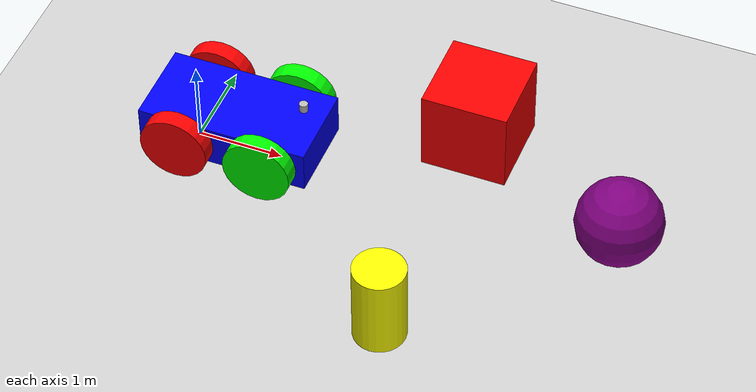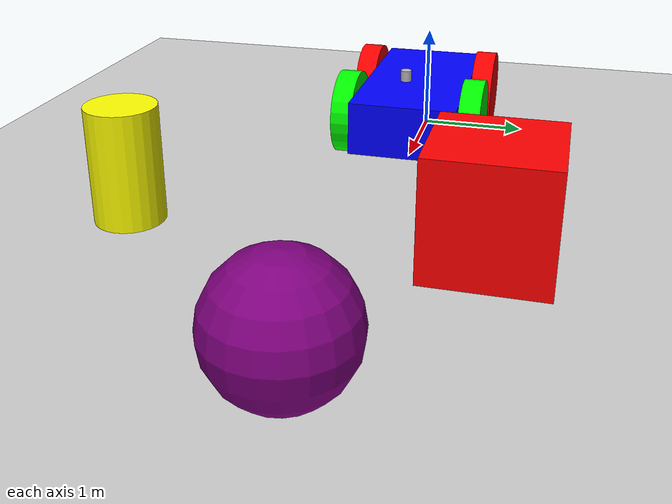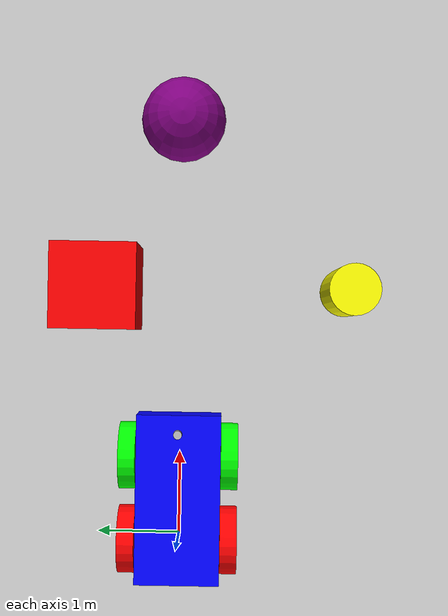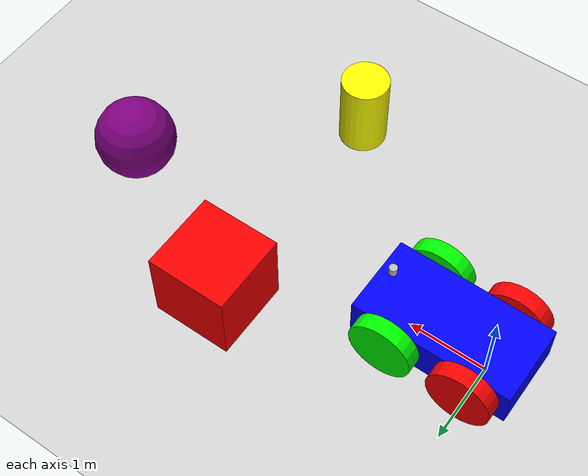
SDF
<?xml version="1.0" ?>
<sdf version="1.10">
    <world name="car_world">
        <physics name="1ms" type="ignored">
            <max_step_size>0.001</max_step_size>
            <real_time_factor>1.0</real_time_factor>
        </physics>

        <plugin filename="gz-sim-sensors-system"
                name="gz::sim::systems::Sensors">
            <render_engine>ogre2</render_engine>
        </plugin>
        <plugin
            filename="gz-sim-physics-system"
            name="gz::sim::systems::Physics">
        </plugin>
        <plugin
            filename="gz-sim-user-commands-system"
            name="gz::sim::systems::UserCommands">
        </plugin>
        <plugin
            filename="gz-sim-scene-broadcaster-system"
            name="gz::sim::systems::SceneBroadcaster">
        </plugin>

        <light type="directional" name="sun">
            <cast_shadows>true</cast_shadows>
            <pose>0 0 10 0 0 0</pose>
            <diffuse>0.8 0.8 0.8 1</diffuse>
            <specular>0.2 0.2 0.2 1</specular>
            <attenuation>
                <range>1000</range>
                <constant>0.9</constant>
                <linear>0.01</linear>
                <quadratic>0.001</quadratic>
            </attenuation>
            <direction>-0.5 0.1 -0.9</direction>
        </light>

        <model name="ground_plane">
            <static>true</static>
            <link name="link">
                <collision name="collision">
                <geometry>
                    <plane>
                    <normal>0 0 1</normal>
                    </plane>
                </geometry>
                </collision>
                <visual name="visual">
                <geometry>
                    <plane>
                    <normal>0 0 1</normal>
                    <size>100 100</size>
                    </plane>
                </geometry>
                <material>
                    <ambient>0.8 0.8 0.8 1</ambient>
                    <diffuse>0.8 0.8 0.8 1</diffuse>
                    <specular>0.8 0.8 0.8 1</specular>
                </material>
                </visual>
            </link>
        </model>

        <model name="red_box">
        <pose>3 1 0.5 0 0 0</pose>
        <link name="link">
            <collision name="collision">
            <geometry>
                <box><size>1 1 1</size></box>
            </geometry>
            </collision>
            <visual name="visual">
            <geometry>
                <box><size>1 1 1</size></box>
            </geometry>
            <material>
                <ambient>1 0 0 1</ambient>
                <diffuse>1 0 0 1</diffuse>
                <specular>0.5 0.5 0.5 1</specular>
            </material>
            </visual>
        </link>
        </model>

        <model name="yellow_cylinder">
        <pose>3 -2 0.5 0 0 0</pose>
        <link name="link">
            <collision name="collision">
            <geometry>
                <cylinder>
                <radius>0.3</radius>
                <length>1.0</length>
                </cylinder>
            </geometry>
            </collision>
            <visual name="visual">
            <geometry>
                <cylinder>
                <radius>0.3</radius>
                <length>1.0</length>
                </cylinder>
            </geometry>
            <material>
                <ambient>1 1 0 1</ambient>
                <diffuse>1 1 0 1</diffuse>
                <specular>0.5 0.5 0.5 1</specular>
            </material>
            </visual>
        </link>
        </model>

        <model name="purple_sphere">
        <pose>5 0 0.5 0 0 0</pose>
        <link name="link">
            <collision name="collision">
            <geometry>
                <sphere><radius>0.5</radius></sphere>
            </geometry>
            </collision>
            <visual name="visual">
            <geometry>
                <sphere><radius>0.5</radius></sphere>
            </geometry>
            <material>
                <ambient>0.5 0 0.5 1</ambient>
                <diffuse>0.5 0 0.5 1</diffuse>
                <specular>0.5 0.5 0.5 1</specular>
            </material>
            </visual>
        </link>
        </model>

        <model name='vehicle_blue' canonical_link='chassis'>

            <plugin filename="gz-sim-diff-drive-system"
                    name="gz::sim::systems::DiffDrive">
                <!-- For 4-wheel drive, list both front and rear joints -->
                <left_joint>left_front_wheel_joint</left_joint>
                <left_joint>left_back_wheel_joint</left_joint>
                <right_joint>right_front_wheel_joint</right_joint>
                <right_joint>right_back_wheel_joint</right_joint>
                <wheel_separation>1.2</wheel_separation>
                <wheel_radius>0.4</wheel_radius>
                <odom_publish_frequency>1</odom_publish_frequency>
                <topic>cmd_vel</topic>
            </plugin>

            <pose relative_to='world'>0 0 0 0 0 0</pose>
            <link name='chassis'>
                <pose relative_to='__model__'>0.5 0 0.4 0 0 0</pose>
                    <inertial> <!--inertial properties of the link mass, inertia matix-->
                        <mass>1.14395</mass>
                        <inertia>
                            <ixx>0.095329</ixx>
                            <ixy>0</ixy>
                            <ixz>0</ixz>
                            <iyy>0.381317</iyy>
                            <iyz>0</iyz>
                            <izz>0.476646</izz>
                        </inertia>
                    </inertial>
                    <visual name='visual'>
                        <geometry>
                            <box>
                                <size>2.0 1.0 0.5</size>
                            </box>
                        </geometry>
                        <!--let's add color to our link-->
                        <material>
                            <ambient>0.0 0.0 1.0 1</ambient>
                            <diffuse>0.0 0.0 1.0 1</diffuse>
                            <specular>0.0 0.0 1.0 1</specular>
                        </material>
                    </visual>
                    <collision name='collision'>
                        <geometry>
                            <box>
                                <size>2.0 1.0 0.5</size>
                            </box>
                        </geometry>
                    </collision>
            </link>
            <link name='left_back_wheel'>
                <pose relative_to="chassis">-0.5 0.6 0 -1.5707 0 0</pose>
                <inertial>
                    <mass>1</mass>
                    <inertia>
                        <ixx>0.043333</ixx>
                        <ixy>0</ixy>
                        <ixz>0</ixz>
                        <iyy>0.043333</iyy>
                        <iyz>0</iyz>
                        <izz>0.08</izz>
                    </inertia>
                </inertial>
                <visual name='visual'>
                    <geometry>
                        <cylinder>
                            <radius>0.4</radius>
                            <length>0.2</length>
                        </cylinder>
                    </geometry>
                    <material>
                        <ambient>1.0 0.0 0.0 1</ambient>
                        <diffuse>1.0 0.0 0.0 1</diffuse>
                        <specular>1.0 0.0 0.0 1</specular>
                    </material>
                </visual>
                <collision name='collision'>
                    <geometry>
                        <cylinder>
                            <radius>0.4</radius>
                            <length>0.2</length>
                        </cylinder>
                    </geometry>
                </collision>
            </link>
            <link name='right_back_wheel'>
                <pose relative_to="chassis">-0.5 -0.6 0 -1.5707 0 0</pose> <!--angles are in radian-->
                <inertial>
                    <mass>1</mass>
                    <inertia>
                        <ixx>0.043333</ixx>
                        <ixy>0</ixy>
                        <ixz>0</ixz>
                        <iyy>0.043333</iyy>
                        <iyz>0</iyz>
                        <izz>0.08</izz>
                    </inertia>
                </inertial>
                <visual name='visual'>
                    <geometry>
                        <cylinder>
                            <radius>0.4</radius>
                            <length>0.2</length>
                        </cylinder>
                    </geometry>
                    <material>
                        <ambient>1.0 0.0 0.0 1</ambient>
                        <diffuse>1.0 0.0 0.0 1</diffuse>
                        <specular>1.0 0.0 0.0 1</specular>
                    </material>
                </visual>
                <collision name='collision'>
                    <geometry>
                        <cylinder>
                            <radius>0.4</radius>
                            <length>0.2</length>
                        </cylinder>
                    </geometry>
                </collision>
            </link>

            <frame name="front_right_frame" attached_to='chassis'>
                <pose>0.5 -0.6 0 -1.5707 0 0</pose>
            </frame>
            <frame name="front_left_frame" attached_to='chassis'>
                <pose>0.5 0.6 0 -1.5707 0 0</pose>
            </frame>

            <!--caster wheel-->
            <link name='right_front_wheel'>
                <pose relative_to='front_right_frame'/>
                <inertial>
                    <mass>1</mass>
                    <inertia>
                        <ixx>0.043333</ixx>
                        <ixy>0</ixy>
                        <ixz>0</ixz>
                        <iyy>0.043333</iyy>
                        <iyz>0</iyz>
                        <izz>0.08</izz>
                    </inertia>
                </inertial>
                <visual name='visual'>
                    <geometry>
                        <cylinder>
                            <radius>0.4</radius>
                            <length>0.2</length>
                        </cylinder>
                    </geometry>
                    <material>
                        <ambient>0.0 1 0.0 1</ambient>
                        <diffuse>0.0 1 0.0 1</diffuse>
                        <specular>0.0 1 0.0 1</specular>
                    </material>
                </visual>
                <collision name='collision'>
                    <geometry>
                        <cylinder>
                            <radius>0.4</radius>
                            <length>0.2</length>
                        </cylinder>
                    </geometry>
                </collision>
            </link>

            <!--caster wheel-->
            <link name='left_front_wheel'>
                <pose relative_to='front_left_frame'/>
                <inertial>
                    <mass>1</mass>
                    <inertia>
                        <ixx>0.043333</ixx>
                        <ixy>0</ixy>
                        <ixz>0</ixz>
                        <iyy>0.043333</iyy>
                        <iyz>0</iyz>
                        <izz>0.08</izz>
                    </inertia>
                </inertial>
                <visual name='visual'>
                    <geometry>
                        <cylinder>
                            <radius>0.4</radius>
                            <length>0.2</length>
                        </cylinder>
                    </geometry>
                    <material>
                        <ambient>0.0 1 0.0 1</ambient>
                        <diffuse>0.0 1 0.0 1</diffuse>
                        <specular>0.0 1 0.0 1</specular>
                    </material>
                </visual>
                <collision name='collision'>
                    <geometry>
                        <cylinder>
                            <radius>0.4</radius>
                            <length>0.2</length>
                        </cylinder>
                    </geometry>
                </collision>
            </link>

            <link name='lidar_link'>
                <pose relative_to='chassis'>0.8 0 0.5 0 0 0</pose>
                <inertial>
                    <mass>0.1</mass>
                    <inertia>
                        <ixx>0.000166667</ixx>
                        <iyy>0.000166667</iyy>
                        <izz>0.000166667</izz>
                    </inertia>
                </inertial>
                <visual name='visual'>
                    <geometry>
                        <cylinder>
                            <radius>0.05</radius>
                            <length>0.1</length>
                        </cylinder>
                    </geometry>
                </visual>
                <sensor name='gpu_lidar' type='gpu_lidar'>
                    <topic>lidar</topic>
                    <update_rate>10</update_rate>
                    <always_on>1</always_on>
                    <lidar>
                        <scan>
                            <horizontal>
                                <samples>640</samples>
                                <resolution>1</resolution>
                                <min_angle>-1.396263</min_angle>
                                <max_angle>1.396263</max_angle>
                            </horizontal>
                        </scan>
                        <range>
                            <min>0.08</min>
                            <max>10.0</max>
                        </range>
                    </lidar>
                    <visualize>true</visualize>
                </sensor>
            </link>

            <joint name='lidar_joint' type='fixed'>
                <parent>chassis</parent>
                <child>lidar_link</child>
            </joint>

            <joint name='left_back_wheel_joint' type='revolute'>
                <pose relative_to='left_back_wheel'/>
                <parent>chassis</parent>
                <child>left_back_wheel</child>
                <axis>
                    <xyz expressed_in='__model__'>0 1 0</xyz>
                    <limit>
                        <lower>-1.79769e+308</lower>
                        <upper>1.79769e+308</upper>
                    </limit>
                </axis>
            </joint>

            <joint name='right_back_wheel_joint' type='revolute'>
                <pose relative_to='right_back_wheel'/>
                <parent>chassis</parent>
                <child>right_back_wheel</child> <axis>
                    <xyz expressed_in='__model__'>0 1 0</xyz>
                    <limit>
                        <lower>-1.79769e+308</lower>
                        <upper>1.79769e+308</upper>
                    </limit>
                </axis>
            </joint>

            <joint name='left_front_wheel_joint' type='revolute'>
                <pose relative_to='left_front_wheel'/>
                <parent>chassis</parent>
                <child>left_front_wheel</child>
                <axis>
                    <xyz expressed_in='__model__'>0 1 0</xyz>
                    <limit>
                        <lower>-1.79769e+308</lower>
                        <upper>1.79769e+308</upper>
                    </limit>
                </axis>
            </joint>

            <joint name='right_front_wheel_joint' type='revolute'>
                <pose relative_to='right_front_wheel'/>
                <parent>chassis</parent>
                <child>right_front_wheel</child> <axis>
                    <xyz expressed_in='__model__'>0 1 0</xyz>
                    <limit>
                        <lower>-1.79769e+308</lower>
                        <upper>1.79769e+308</upper>
                    </limit>
                </axis>
            </joint>

        </model>
    </world>
</sdf>
